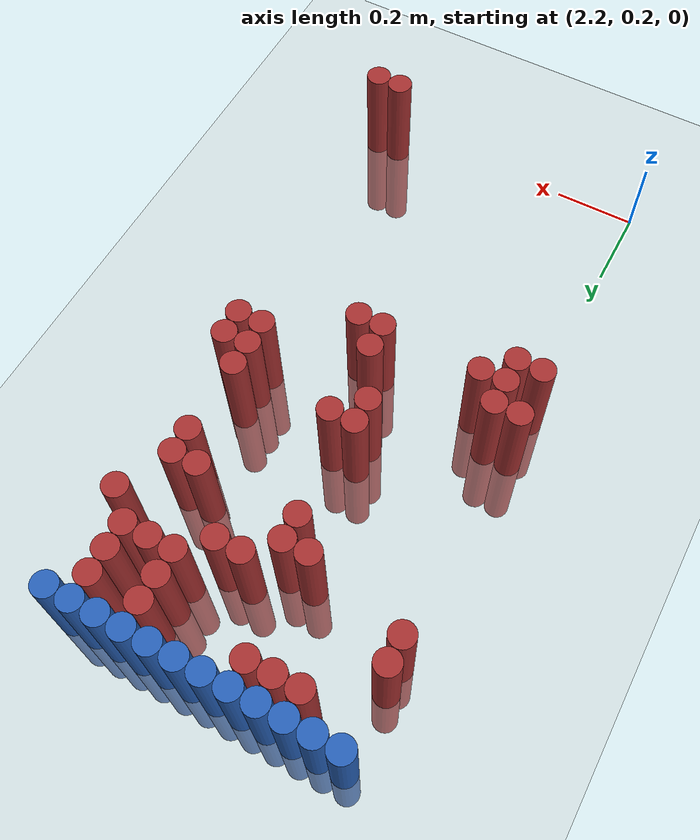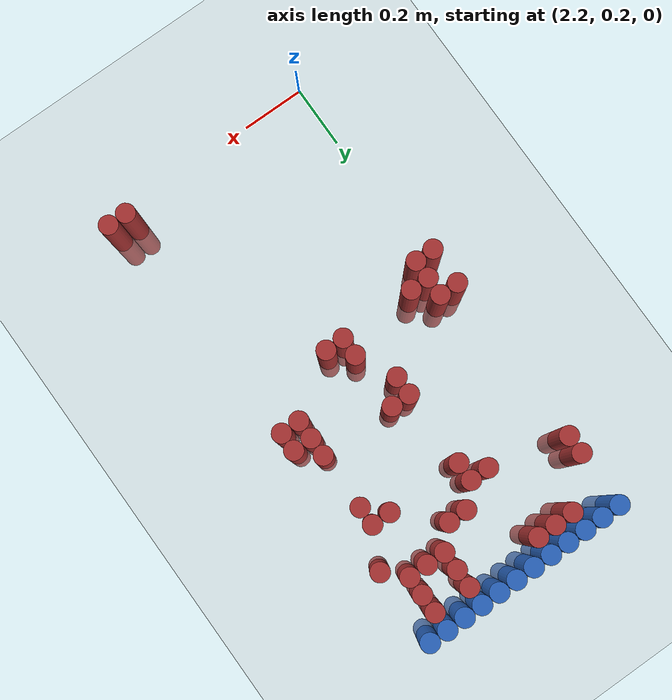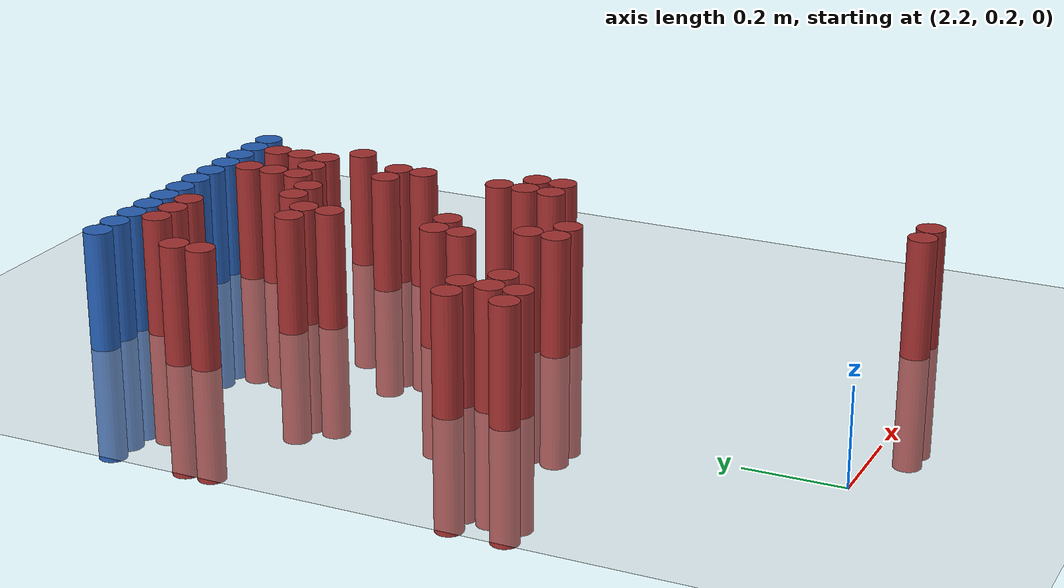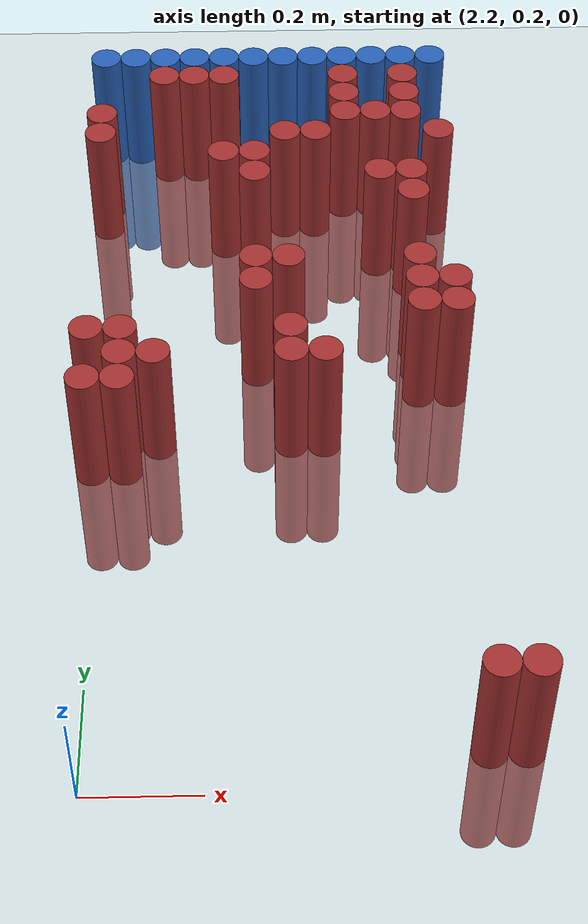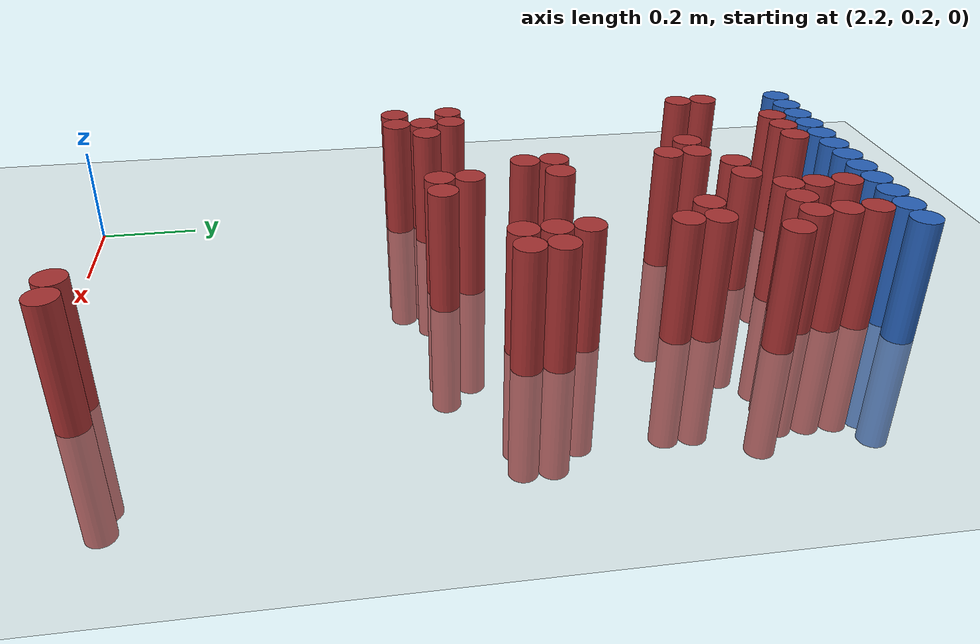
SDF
<sdf version="1.6">
 <world name="default">
  <model name="ground_plane">
   <static>1</static>
   <link name="link">
    <collision name="collision">
     <geometry><plane><normal>0 0 1</normal><size>100 100</size></plane></geometry>
     <surface><friction><ode><mu>100</mu><mu2>50</mu2></ode></friction></surface>
    </collision>
    <visual name="visual">
     <cast_shadows>0</cast_shadows>
     <geometry><plane><normal>0 0 1</normal><size>100 100</size></plane></geometry>
     <material>
      <script><uri>file://media/materials/scripts/gazebo.material</uri><name>Gazebo/Grey</name></script>
     </material>
    </visual>
   </link>
  </model>
  <model name="unit_cylinder_97">
   <static>1</static>
   <pose>2.190000 1.770000 0.000000 0.000000 0.000000 0.000000</pose>
   <link name="link">
    <inertial>
     <mass>1</mass>
     <inertia><ixx>0.145833</ixx><ixy>0</ixy><ixz>0</ixz><iyy>0.145833</iyy><iyz>0</iyz><izz>0.125</izz></inertia>
    </inertial>
    <collision name="collision">
     <geometry><cylinder><radius>0.030000</radius><length>0.5</length></cylinder></geometry>
    </collision>
    <visual name="visual">
     <geometry><cylinder><radius>0.030000</radius><length>0.5</length></cylinder></geometry>
     <material>
      <ambient>0.152000 0.379000 0.720000 1</ambient>
      <diffuse>0.152000 0.379000 0.720000 1</diffuse>
     </material>
     <material>
      <script><name>Gazebo/Grey</name><uri>file://media/materials/scripts/gazebo.material</uri></script>
     </material>
    </visual>
   </link>
  </model>
  <model name="unit_cylinder_98">
   <static>1</static>
   <pose>2.250000 1.770000 0.000000 0.000000 0.000000 0.000000</pose>
   <link name="link">
    <inertial>
     <mass>1</mass>
     <inertia><ixx>0.145833</ixx><ixy>0</ixy><ixz>0</ixz><iyy>0.145833</iyy><iyz>0</iyz><izz>0.125</izz></inertia>
    </inertial>
    <collision name="collision">
     <geometry><cylinder><radius>0.030000</radius><length>0.5</length></cylinder></geometry>
    </collision>
    <visual name="visual">
     <geometry><cylinder><radius>0.030000</radius><length>0.5</length></cylinder></geometry>
     <material>
      <ambient>0.152000 0.379000 0.720000 1</ambient>
      <diffuse>0.152000 0.379000 0.720000 1</diffuse>
     </material>
     <material>
      <script><name>Gazebo/Grey</name><uri>file://media/materials/scripts/gazebo.material</uri></script>
     </material>
    </visual>
   </link>
  </model>
  <model name="unit_cylinder_99">
   <static>1</static>
   <pose>2.310000 1.770000 0.000000 0.000000 0.000000 0.000000</pose>
   <link name="link">
    <inertial>
     <mass>1</mass>
     <inertia><ixx>0.145833</ixx><ixy>0</ixy><ixz>0</ixz><iyy>0.145833</iyy><iyz>0</iyz><izz>0.125</izz></inertia>
    </inertial>
    <collision name="collision">
     <geometry><cylinder><radius>0.030000</radius><length>0.5</length></cylinder></geometry>
    </collision>
    <visual name="visual">
     <geometry><cylinder><radius>0.030000</radius><length>0.5</length></cylinder></geometry>
     <material>
      <ambient>0.152000 0.379000 0.720000 1</ambient>
      <diffuse>0.152000 0.379000 0.720000 1</diffuse>
     </material>
     <material>
      <script><name>Gazebo/Grey</name><uri>file://media/materials/scripts/gazebo.material</uri></script>
     </material>
    </visual>
   </link>
  </model>
  <model name="unit_cylinder_100">
   <static>1</static>
   <pose>2.370000 1.770000 0.000000 0.000000 0.000000 0.000000</pose>
   <link name="link">
    <inertial>
     <mass>1</mass>
     <inertia><ixx>0.145833</ixx><ixy>0</ixy><ixz>0</ixz><iyy>0.145833</iyy><iyz>0</iyz><izz>0.125</izz></inertia>
    </inertial>
    <collision name="collision">
     <geometry><cylinder><radius>0.030000</radius><length>0.5</length></cylinder></geometry>
    </collision>
    <visual name="visual">
     <geometry><cylinder><radius>0.030000</radius><length>0.5</length></cylinder></geometry>
     <material>
      <ambient>0.152000 0.379000 0.720000 1</ambient>
      <diffuse>0.152000 0.379000 0.720000 1</diffuse>
     </material>
     <material>
      <script><name>Gazebo/Grey</name><uri>file://media/materials/scripts/gazebo.material</uri></script>
     </material>
    </visual>
   </link>
  </model>
  <model name="unit_cylinder_101">
   <static>1</static>
   <pose>2.430000 1.770000 0.000000 0.000000 0.000000 0.000000</pose>
   <link name="link">
    <inertial>
     <mass>1</mass>
     <inertia><ixx>0.145833</ixx><ixy>0</ixy><ixz>0</ixz><iyy>0.145833</iyy><iyz>0</iyz><izz>0.125</izz></inertia>
    </inertial>
    <collision name="collision">
     <geometry><cylinder><radius>0.030000</radius><length>0.5</length></cylinder></geometry>
    </collision>
    <visual name="visual">
     <geometry><cylinder><radius>0.030000</radius><length>0.5</length></cylinder></geometry>
     <material>
      <ambient>0.152000 0.379000 0.720000 1</ambient>
      <diffuse>0.152000 0.379000 0.720000 1</diffuse>
     </material>
     <material>
      <script><name>Gazebo/Grey</name><uri>file://media/materials/scripts/gazebo.material</uri></script>
     </material>
    </visual>
   </link>
  </model>
  <model name="unit_cylinder_102">
   <static>1</static>
   <pose>2.490000 1.770000 0.000000 0.000000 0.000000 0.000000</pose>
   <link name="link">
    <inertial>
     <mass>1</mass>
     <inertia><ixx>0.145833</ixx><ixy>0</ixy><ixz>0</ixz><iyy>0.145833</iyy><iyz>0</iyz><izz>0.125</izz></inertia>
    </inertial>
    <collision name="collision">
     <geometry><cylinder><radius>0.030000</radius><length>0.5</length></cylinder></geometry>
    </collision>
    <visual name="visual">
     <geometry><cylinder><radius>0.030000</radius><length>0.5</length></cylinder></geometry>
     <material>
      <ambient>0.152000 0.379000 0.720000 1</ambient>
      <diffuse>0.152000 0.379000 0.720000 1</diffuse>
     </material>
     <material>
      <script><name>Gazebo/Grey</name><uri>file://media/materials/scripts/gazebo.material</uri></script>
     </material>
    </visual>
   </link>
  </model>
  <model name="unit_cylinder_103">
   <static>1</static>
   <pose>2.550000 1.770000 0.000000 0.000000 0.000000 0.000000</pose>
   <link name="link">
    <inertial>
     <mass>1</mass>
     <inertia><ixx>0.145833</ixx><ixy>0</ixy><ixz>0</ixz><iyy>0.145833</iyy><iyz>0</iyz><izz>0.125</izz></inertia>
    </inertial>
    <collision name="collision">
     <geometry><cylinder><radius>0.030000</radius><length>0.5</length></cylinder></geometry>
    </collision>
    <visual name="visual">
     <geometry><cylinder><radius>0.030000</radius><length>0.5</length></cylinder></geometry>
     <material>
      <ambient>0.152000 0.379000 0.720000 1</ambient>
      <diffuse>0.152000 0.379000 0.720000 1</diffuse>
     </material>
     <material>
      <script><name>Gazebo/Grey</name><uri>file://media/materials/scripts/gazebo.material</uri></script>
     </material>
    </visual>
   </link>
  </model>
  <model name="unit_cylinder_104">
   <static>1</static>
   <pose>2.610000 1.770000 0.000000 0.000000 0.000000 0.000000</pose>
   <link name="link">
    <inertial>
     <mass>1</mass>
     <inertia><ixx>0.145833</ixx><ixy>0</ixy><ixz>0</ixz><iyy>0.145833</iyy><iyz>0</iyz><izz>0.125</izz></inertia>
    </inertial>
    <collision name="collision">
     <geometry><cylinder><radius>0.030000</radius><length>0.5</length></cylinder></geometry>
    </collision>
    <visual name="visual">
     <geometry><cylinder><radius>0.030000</radius><length>0.5</length></cylinder></geometry>
     <material>
      <ambient>0.152000 0.379000 0.720000 1</ambient>
      <diffuse>0.152000 0.379000 0.720000 1</diffuse>
     </material>
     <material>
      <script><name>Gazebo/Grey</name><uri>file://media/materials/scripts/gazebo.material</uri></script>
     </material>
    </visual>
   </link>
  </model>
  <model name="unit_cylinder_105">
   <static>1</static>
   <pose>2.670000 1.770000 0.000000 0.000000 0.000000 0.000000</pose>
   <link name="link">
    <inertial>
     <mass>1</mass>
     <inertia><ixx>0.145833</ixx><ixy>0</ixy><ixz>0</ixz><iyy>0.145833</iyy><iyz>0</iyz><izz>0.125</izz></inertia>
    </inertial>
    <collision name="collision">
     <geometry><cylinder><radius>0.030000</radius><length>0.5</length></cylinder></geometry>
    </collision>
    <visual name="visual">
     <geometry><cylinder><radius>0.030000</radius><length>0.5</length></cylinder></geometry>
     <material>
      <ambient>0.152000 0.379000 0.720000 1</ambient>
      <diffuse>0.152000 0.379000 0.720000 1</diffuse>
     </material>
     <material>
      <script><name>Gazebo/Grey</name><uri>file://media/materials/scripts/gazebo.material</uri></script>
     </material>
    </visual>
   </link>
  </model>
  <model name="unit_cylinder_106">
   <static>1</static>
   <pose>2.730000 1.770000 0.000000 0.000000 0.000000 0.000000</pose>
   <link name="link">
    <inertial>
     <mass>1</mass>
     <inertia><ixx>0.145833</ixx><ixy>0</ixy><ixz>0</ixz><iyy>0.145833</iyy><iyz>0</iyz><izz>0.125</izz></inertia>
    </inertial>
    <collision name="collision">
     <geometry><cylinder><radius>0.030000</radius><length>0.5</length></cylinder></geometry>
    </collision>
    <visual name="visual">
     <geometry><cylinder><radius>0.030000</radius><length>0.5</length></cylinder></geometry>
     <material>
      <ambient>0.152000 0.379000 0.720000 1</ambient>
      <diffuse>0.152000 0.379000 0.720000 1</diffuse>
     </material>
     <material>
      <script><name>Gazebo/Grey</name><uri>file://media/materials/scripts/gazebo.material</uri></script>
     </material>
    </visual>
   </link>
  </model>
  <model name="unit_cylinder_107">
   <static>1</static>
   <pose>2.790000 1.770000 0.000000 0.000000 0.000000 0.000000</pose>
   <link name="link">
    <inertial>
     <mass>1</mass>
     <inertia><ixx>0.145833</ixx><ixy>0</ixy><ixz>0</ixz><iyy>0.145833</iyy><iyz>0</iyz><izz>0.125</izz></inertia>
    </inertial>
    <collision name="collision">
     <geometry><cylinder><radius>0.030000</radius><length>0.5</length></cylinder></geometry>
    </collision>
    <visual name="visual">
     <geometry><cylinder><radius>0.030000</radius><length>0.5</length></cylinder></geometry>
     <material>
      <ambient>0.152000 0.379000 0.720000 1</ambient>
      <diffuse>0.152000 0.379000 0.720000 1</diffuse>
     </material>
     <material>
      <script><name>Gazebo/Grey</name><uri>file://media/materials/scripts/gazebo.material</uri></script>
     </material>
    </visual>
   </link>
  </model>
  <model name="unit_cylinder_108">
   <static>1</static>
   <pose>2.850000 1.770000 0.000000 0.000000 0.000000 0.000000</pose>
   <link name="link">
    <inertial>
     <mass>1</mass>
     <inertia><ixx>0.145833</ixx><ixy>0</ixy><ixz>0</ixz><iyy>0.145833</iyy><iyz>0</iyz><izz>0.125</izz></inertia>
    </inertial>
    <collision name="collision">
     <geometry><cylinder><radius>0.030000</radius><length>0.5</length></cylinder></geometry>
    </collision>
    <visual name="visual">
     <geometry><cylinder><radius>0.030000</radius><length>0.5</length></cylinder></geometry>
     <material>
      <ambient>0.152000 0.379000 0.720000 1</ambient>
      <diffuse>0.152000 0.379000 0.720000 1</diffuse>
     </material>
     <material>
      <script><name>Gazebo/Grey</name><uri>file://media/materials/scripts/gazebo.material</uri></script>
     </material>
    </visual>
   </link>
  </model>
  <model name="unit_cylinder_125">
   <static>1</static>
   <pose>2.310000 1.710000 0.000000 0.000000 0.000000 0.000000</pose>
   <link name="link">
    <inertial>
     <mass>1</mass>
     <inertia><ixx>0.145833</ixx><ixy>0</ixy><ixz>0</ixz><iyy>0.145833</iyy><iyz>0</iyz><izz>0.125</izz></inertia>
    </inertial>
    <collision name="collision">
     <geometry><cylinder><radius>0.030000</radius><length>0.5</length></cylinder></geometry>
    </collision>
    <visual name="visual">
     <geometry><cylinder><radius>0.030000</radius><length>0.5</length></cylinder></geometry>
     <material>
      <ambient>0.648000 0.192000 0.192000 1</ambient>
      <diffuse>0.648000 0.192000 0.192000 1</diffuse>
     </material>
     <material>
      <script><name>Gazebo/Grey</name><uri>file://media/materials/scripts/gazebo.material</uri></script>
     </material>
    </visual>
   </link>
  </model>
  <model name="unit_cylinder_126">
   <static>1</static>
   <pose>2.370000 1.710000 0.000000 0.000000 0.000000 0.000000</pose>
   <link name="link">
    <inertial>
     <mass>1</mass>
     <inertia><ixx>0.145833</ixx><ixy>0</ixy><ixz>0</ixz><iyy>0.145833</iyy><iyz>0</iyz><izz>0.125</izz></inertia>
    </inertial>
    <collision name="collision">
     <geometry><cylinder><radius>0.030000</radius><length>0.5</length></cylinder></geometry>
    </collision>
    <visual name="visual">
     <geometry><cylinder><radius>0.030000</radius><length>0.5</length></cylinder></geometry>
     <material>
      <ambient>0.648000 0.192000 0.192000 1</ambient>
      <diffuse>0.648000 0.192000 0.192000 1</diffuse>
     </material>
     <material>
      <script><name>Gazebo/Grey</name><uri>file://media/materials/scripts/gazebo.material</uri></script>
     </material>
    </visual>
   </link>
  </model>
  <model name="unit_cylinder_127">
   <static>1</static>
   <pose>2.430000 1.710000 0.000000 0.000000 0.000000 0.000000</pose>
   <link name="link">
    <inertial>
     <mass>1</mass>
     <inertia><ixx>0.145833</ixx><ixy>0</ixy><ixz>0</ixz><iyy>0.145833</iyy><iyz>0</iyz><izz>0.125</izz></inertia>
    </inertial>
    <collision name="collision">
     <geometry><cylinder><radius>0.030000</radius><length>0.5</length></cylinder></geometry>
    </collision>
    <visual name="visual">
     <geometry><cylinder><radius>0.030000</radius><length>0.5</length></cylinder></geometry>
     <material>
      <ambient>0.648000 0.192000 0.192000 1</ambient>
      <diffuse>0.648000 0.192000 0.192000 1</diffuse>
     </material>
     <material>
      <script><name>Gazebo/Grey</name><uri>file://media/materials/scripts/gazebo.material</uri></script>
     </material>
    </visual>
   </link>
  </model>
  <model name="unit_cylinder_128">
   <static>1</static>
   <pose>2.670000 1.710000 0.000000 0.000000 0.000000 0.000000</pose>
   <link name="link">
    <inertial>
     <mass>1</mass>
     <inertia><ixx>0.145833</ixx><ixy>0</ixy><ixz>0</ixz><iyy>0.145833</iyy><iyz>0</iyz><izz>0.125</izz></inertia>
    </inertial>
    <collision name="collision">
     <geometry><cylinder><radius>0.030000</radius><length>0.5</length></cylinder></geometry>
    </collision>
    <visual name="visual">
     <geometry><cylinder><radius>0.030000</radius><length>0.5</length></cylinder></geometry>
     <material>
      <ambient>0.648000 0.192000 0.192000 1</ambient>
      <diffuse>0.648000 0.192000 0.192000 1</diffuse>
     </material>
     <material>
      <script><name>Gazebo/Grey</name><uri>file://media/materials/scripts/gazebo.material</uri></script>
     </material>
    </visual>
   </link>
  </model>
  <model name="unit_cylinder_129">
   <static>1</static>
   <pose>2.790000 1.710000 0.000000 0.000000 0.000000 0.000000</pose>
   <link name="link">
    <inertial>
     <mass>1</mass>
     <inertia><ixx>0.145833</ixx><ixy>0</ixy><ixz>0</ixz><iyy>0.145833</iyy><iyz>0</iyz><izz>0.125</izz></inertia>
    </inertial>
    <collision name="collision">
     <geometry><cylinder><radius>0.030000</radius><length>0.5</length></cylinder></geometry>
    </collision>
    <visual name="visual">
     <geometry><cylinder><radius>0.030000</radius><length>0.5</length></cylinder></geometry>
     <material>
      <ambient>0.648000 0.192000 0.192000 1</ambient>
      <diffuse>0.648000 0.192000 0.192000 1</diffuse>
     </material>
     <material>
      <script><name>Gazebo/Grey</name><uri>file://media/materials/scripts/gazebo.material</uri></script>
     </material>
    </visual>
   </link>
  </model>
  <model name="unit_cylinder_135">
   <static>1</static>
   <pose>2.670000 1.650000 0.000000 0.000000 0.000000 0.000000</pose>
   <link name="link">
    <inertial>
     <mass>1</mass>
     <inertia><ixx>0.145833</ixx><ixy>0</ixy><ixz>0</ixz><iyy>0.145833</iyy><iyz>0</iyz><izz>0.125</izz></inertia>
    </inertial>
    <collision name="collision">
     <geometry><cylinder><radius>0.030000</radius><length>0.5</length></cylinder></geometry>
    </collision>
    <visual name="visual">
     <geometry><cylinder><radius>0.030000</radius><length>0.5</length></cylinder></geometry>
     <material>
      <ambient>0.648000 0.192000 0.192000 1</ambient>
      <diffuse>0.648000 0.192000 0.192000 1</diffuse>
     </material>
     <material>
      <script><name>Gazebo/Grey</name><uri>file://media/materials/scripts/gazebo.material</uri></script>
     </material>
    </visual>
   </link>
  </model>
  <model name="unit_cylinder_136">
   <static>1</static>
   <pose>2.790000 1.650000 0.000000 0.000000 0.000000 0.000000</pose>
   <link name="link">
    <inertial>
     <mass>1</mass>
     <inertia><ixx>0.145833</ixx><ixy>0</ixy><ixz>0</ixz><iyy>0.145833</iyy><iyz>0</iyz><izz>0.125</izz></inertia>
    </inertial>
    <collision name="collision">
     <geometry><cylinder><radius>0.030000</radius><length>0.5</length></cylinder></geometry>
    </collision>
    <visual name="visual">
     <geometry><cylinder><radius>0.030000</radius><length>0.5</length></cylinder></geometry>
     <material>
      <ambient>0.648000 0.192000 0.192000 1</ambient>
      <diffuse>0.648000 0.192000 0.192000 1</diffuse>
     </material>
     <material>
      <script><name>Gazebo/Grey</name><uri>file://media/materials/scripts/gazebo.material</uri></script>
     </material>
    </visual>
   </link>
  </model>
  <model name="unit_cylinder_139">
   <static>1</static>
   <pose>2.190000 1.590000 0.000000 0.000000 0.000000 0.000000</pose>
   <link name="link">
    <inertial>
     <mass>1</mass>
     <inertia><ixx>0.145833</ixx><ixy>0</ixy><ixz>0</ixz><iyy>0.145833</iyy><iyz>0</iyz><izz>0.125</izz></inertia>
    </inertial>
    <collision name="collision">
     <geometry><cylinder><radius>0.030000</radius><length>0.5</length></cylinder></geometry>
    </collision>
    <visual name="visual">
     <geometry><cylinder><radius>0.030000</radius><length>0.5</length></cylinder></geometry>
     <material>
      <ambient>0.648000 0.192000 0.192000 1</ambient>
      <diffuse>0.648000 0.192000 0.192000 1</diffuse>
     </material>
     <material>
      <script><name>Gazebo/Grey</name><uri>file://media/materials/scripts/gazebo.material</uri></script>
     </material>
    </visual>
   </link>
  </model>
  <model name="unit_cylinder_140">
   <static>1</static>
   <pose>2.670000 1.590000 0.000000 0.000000 0.000000 0.000000</pose>
   <link name="link">
    <inertial>
     <mass>1</mass>
     <inertia><ixx>0.145833</ixx><ixy>0</ixy><ixz>0</ixz><iyy>0.145833</iyy><iyz>0</iyz><izz>0.125</izz></inertia>
    </inertial>
    <collision name="collision">
     <geometry><cylinder><radius>0.030000</radius><length>0.5</length></cylinder></geometry>
    </collision>
    <visual name="visual">
     <geometry><cylinder><radius>0.030000</radius><length>0.5</length></cylinder></geometry>
     <material>
      <ambient>0.648000 0.192000 0.192000 1</ambient>
      <diffuse>0.648000 0.192000 0.192000 1</diffuse>
     </material>
     <material>
      <script><name>Gazebo/Grey</name><uri>file://media/materials/scripts/gazebo.material</uri></script>
     </material>
    </visual>
   </link>
  </model>
  <model name="unit_cylinder_141">
   <static>1</static>
   <pose>2.730000 1.590000 0.000000 0.000000 0.000000 0.000000</pose>
   <link name="link">
    <inertial>
     <mass>1</mass>
     <inertia><ixx>0.145833</ixx><ixy>0</ixy><ixz>0</ixz><iyy>0.145833</iyy><iyz>0</iyz><izz>0.125</izz></inertia>
    </inertial>
    <collision name="collision">
     <geometry><cylinder><radius>0.030000</radius><length>0.5</length></cylinder></geometry>
    </collision>
    <visual name="visual">
     <geometry><cylinder><radius>0.030000</radius><length>0.5</length></cylinder></geometry>
     <material>
      <ambient>0.648000 0.192000 0.192000 1</ambient>
      <diffuse>0.648000 0.192000 0.192000 1</diffuse>
     </material>
     <material>
      <script><name>Gazebo/Grey</name><uri>file://media/materials/scripts/gazebo.material</uri></script>
     </material>
    </visual>
   </link>
  </model>
  <model name="unit_cylinder_142">
   <static>1</static>
   <pose>2.790000 1.590000 0.000000 0.000000 0.000000 0.000000</pose>
   <link name="link">
    <inertial>
     <mass>1</mass>
     <inertia><ixx>0.145833</ixx><ixy>0</ixy><ixz>0</ixz><iyy>0.145833</iyy><iyz>0</iyz><izz>0.125</izz></inertia>
    </inertial>
    <collision name="collision">
     <geometry><cylinder><radius>0.030000</radius><length>0.5</length></cylinder></geometry>
    </collision>
    <visual name="visual">
     <geometry><cylinder><radius>0.030000</radius><length>0.5</length></cylinder></geometry>
     <material>
      <ambient>0.648000 0.192000 0.192000 1</ambient>
      <diffuse>0.648000 0.192000 0.192000 1</diffuse>
     </material>
     <material>
      <script><name>Gazebo/Grey</name><uri>file://media/materials/scripts/gazebo.material</uri></script>
     </material>
    </visual>
   </link>
  </model>
  <model name="unit_cylinder_144">
   <static>1</static>
   <pose>2.190000 1.530000 0.000000 0.000000 0.000000 0.000000</pose>
   <link name="link">
    <inertial>
     <mass>1</mass>
     <inertia><ixx>0.145833</ixx><ixy>0</ixy><ixz>0</ixz><iyy>0.145833</iyy><iyz>0</iyz><izz>0.125</izz></inertia>
    </inertial>
    <collision name="collision">
     <geometry><cylinder><radius>0.030000</radius><length>0.5</length></cylinder></geometry>
    </collision>
    <visual name="visual">
     <geometry><cylinder><radius>0.030000</radius><length>0.5</length></cylinder></geometry>
     <material>
      <ambient>0.648000 0.192000 0.192000 1</ambient>
      <diffuse>0.648000 0.192000 0.192000 1</diffuse>
     </material>
     <material>
      <script><name>Gazebo/Grey</name><uri>file://media/materials/scripts/gazebo.material</uri></script>
     </material>
    </visual>
   </link>
  </model>
  <model name="unit_cylinder_145">
   <static>1</static>
   <pose>2.550000 1.530000 0.000000 0.000000 0.000000 0.000000</pose>
   <link name="link">
    <inertial>
     <mass>1</mass>
     <inertia><ixx>0.145833</ixx><ixy>0</ixy><ixz>0</ixz><iyy>0.145833</iyy><iyz>0</iyz><izz>0.125</izz></inertia>
    </inertial>
    <collision name="collision">
     <geometry><cylinder><radius>0.030000</radius><length>0.5</length></cylinder></geometry>
    </collision>
    <visual name="visual">
     <geometry><cylinder><radius>0.030000</radius><length>0.5</length></cylinder></geometry>
     <material>
      <ambient>0.648000 0.192000 0.192000 1</ambient>
      <diffuse>0.648000 0.192000 0.192000 1</diffuse>
     </material>
     <material>
      <script><name>Gazebo/Grey</name><uri>file://media/materials/scripts/gazebo.material</uri></script>
     </material>
    </visual>
   </link>
  </model>
  <model name="unit_cylinder_146">
   <static>1</static>
   <pose>2.610000 1.530000 0.000000 0.000000 0.000000 0.000000</pose>
   <link name="link">
    <inertial>
     <mass>1</mass>
     <inertia><ixx>0.145833</ixx><ixy>0</ixy><ixz>0</ixz><iyy>0.145833</iyy><iyz>0</iyz><izz>0.125</izz></inertia>
    </inertial>
    <collision name="collision">
     <geometry><cylinder><radius>0.030000</radius><length>0.5</length></cylinder></geometry>
    </collision>
    <visual name="visual">
     <geometry><cylinder><radius>0.030000</radius><length>0.5</length></cylinder></geometry>
     <material>
      <ambient>0.648000 0.192000 0.192000 1</ambient>
      <diffuse>0.648000 0.192000 0.192000 1</diffuse>
     </material>
     <material>
      <script><name>Gazebo/Grey</name><uri>file://media/materials/scripts/gazebo.material</uri></script>
     </material>
    </visual>
   </link>
  </model>
  <model name="unit_cylinder_147">
   <static>1</static>
   <pose>2.850000 1.530000 0.000000 0.000000 0.000000 0.000000</pose>
   <link name="link">
    <inertial>
     <mass>1</mass>
     <inertia><ixx>0.145833</ixx><ixy>0</ixy><ixz>0</ixz><iyy>0.145833</iyy><iyz>0</iyz><izz>0.125</izz></inertia>
    </inertial>
    <collision name="collision">
     <geometry><cylinder><radius>0.030000</radius><length>0.5</length></cylinder></geometry>
    </collision>
    <visual name="visual">
     <geometry><cylinder><radius>0.030000</radius><length>0.5</length></cylinder></geometry>
     <material>
      <ambient>0.648000 0.192000 0.192000 1</ambient>
      <diffuse>0.648000 0.192000 0.192000 1</diffuse>
     </material>
     <material>
      <script><name>Gazebo/Grey</name><uri>file://media/materials/scripts/gazebo.material</uri></script>
     </material>
    </visual>
   </link>
  </model>
  <model name="unit_cylinder_148">
   <static>1</static>
   <pose>2.430000 1.470000 0.000000 0.000000 0.000000 0.000000</pose>
   <link name="link">
    <inertial>
     <mass>1</mass>
     <inertia><ixx>0.145833</ixx><ixy>0</ixy><ixz>0</ixz><iyy>0.145833</iyy><iyz>0</iyz><izz>0.125</izz></inertia>
    </inertial>
    <collision name="collision">
     <geometry><cylinder><radius>0.030000</radius><length>0.5</length></cylinder></geometry>
    </collision>
    <visual name="visual">
     <geometry><cylinder><radius>0.030000</radius><length>0.5</length></cylinder></geometry>
     <material>
      <ambient>0.648000 0.192000 0.192000 1</ambient>
      <diffuse>0.648000 0.192000 0.192000 1</diffuse>
     </material>
     <material>
      <script><name>Gazebo/Grey</name><uri>file://media/materials/scripts/gazebo.material</uri></script>
     </material>
    </visual>
   </link>
  </model>
  <model name="unit_cylinder_149">
   <static>1</static>
   <pose>2.490000 1.470000 0.000000 0.000000 0.000000 0.000000</pose>
   <link name="link">
    <inertial>
     <mass>1</mass>
     <inertia><ixx>0.145833</ixx><ixy>0</ixy><ixz>0</ixz><iyy>0.145833</iyy><iyz>0</iyz><izz>0.125</izz></inertia>
    </inertial>
    <collision name="collision">
     <geometry><cylinder><radius>0.030000</radius><length>0.5</length></cylinder></geometry>
    </collision>
    <visual name="visual">
     <geometry><cylinder><radius>0.030000</radius><length>0.5</length></cylinder></geometry>
     <material>
      <ambient>0.648000 0.192000 0.192000 1</ambient>
      <diffuse>0.648000 0.192000 0.192000 1</diffuse>
     </material>
     <material>
      <script><name>Gazebo/Grey</name><uri>file://media/materials/scripts/gazebo.material</uri></script>
     </material>
    </visual>
   </link>
  </model>
  <model name="unit_cylinder_150">
   <static>1</static>
   <pose>2.490000 1.410000 0.000000 0.000000 0.000000 0.000000</pose>
   <link name="link">
    <inertial>
     <mass>1</mass>
     <inertia><ixx>0.145833</ixx><ixy>0</ixy><ixz>0</ixz><iyy>0.145833</iyy><iyz>0</iyz><izz>0.125</izz></inertia>
    </inertial>
    <collision name="collision">
     <geometry><cylinder><radius>0.030000</radius><length>0.5</length></cylinder></geometry>
    </collision>
    <visual name="visual">
     <geometry><cylinder><radius>0.030000</radius><length>0.5</length></cylinder></geometry>
     <material>
      <ambient>0.648000 0.192000 0.192000 1</ambient>
      <diffuse>0.648000 0.192000 0.192000 1</diffuse>
     </material>
     <material>
      <script><name>Gazebo/Grey</name><uri>file://media/materials/scripts/gazebo.material</uri></script>
     </material>
    </visual>
   </link>
  </model>
  <model name="unit_cylinder_151">
   <static>1</static>
   <pose>2.730000 1.410000 0.000000 0.000000 0.000000 0.000000</pose>
   <link name="link">
    <inertial>
     <mass>1</mass>
     <inertia><ixx>0.145833</ixx><ixy>0</ixy><ixz>0</ixz><iyy>0.145833</iyy><iyz>0</iyz><izz>0.125</izz></inertia>
    </inertial>
    <collision name="collision">
     <geometry><cylinder><radius>0.030000</radius><length>0.5</length></cylinder></geometry>
    </collision>
    <visual name="visual">
     <geometry><cylinder><radius>0.030000</radius><length>0.5</length></cylinder></geometry>
     <material>
      <ambient>0.648000 0.192000 0.192000 1</ambient>
      <diffuse>0.648000 0.192000 0.192000 1</diffuse>
     </material>
     <material>
      <script><name>Gazebo/Grey</name><uri>file://media/materials/scripts/gazebo.material</uri></script>
     </material>
    </visual>
   </link>
  </model>
  <model name="unit_cylinder_152">
   <static>1</static>
   <pose>2.790000 1.410000 0.000000 0.000000 0.000000 0.000000</pose>
   <link name="link">
    <inertial>
     <mass>1</mass>
     <inertia><ixx>0.145833</ixx><ixy>0</ixy><ixz>0</ixz><iyy>0.145833</iyy><iyz>0</iyz><izz>0.125</izz></inertia>
    </inertial>
    <collision name="collision">
     <geometry><cylinder><radius>0.030000</radius><length>0.5</length></cylinder></geometry>
    </collision>
    <visual name="visual">
     <geometry><cylinder><radius>0.030000</radius><length>0.5</length></cylinder></geometry>
     <material>
      <ambient>0.648000 0.192000 0.192000 1</ambient>
      <diffuse>0.648000 0.192000 0.192000 1</diffuse>
     </material>
     <material>
      <script><name>Gazebo/Grey</name><uri>file://media/materials/scripts/gazebo.material</uri></script>
     </material>
    </visual>
   </link>
  </model>
  <model name="unit_cylinder_153">
   <static>1</static>
   <pose>2.790000 1.350000 0.000000 0.000000 0.000000 0.000000</pose>
   <link name="link">
    <inertial>
     <mass>1</mass>
     <inertia><ixx>0.145833</ixx><ixy>0</ixy><ixz>0</ixz><iyy>0.145833</iyy><iyz>0</iyz><izz>0.125</izz></inertia>
    </inertial>
    <collision name="collision">
     <geometry><cylinder><radius>0.030000</radius><length>0.5</length></cylinder></geometry>
    </collision>
    <visual name="visual">
     <geometry><cylinder><radius>0.030000</radius><length>0.5</length></cylinder></geometry>
     <material>
      <ambient>0.648000 0.192000 0.192000 1</ambient>
      <diffuse>0.648000 0.192000 0.192000 1</diffuse>
     </material>
     <material>
      <script><name>Gazebo/Grey</name><uri>file://media/materials/scripts/gazebo.material</uri></script>
     </material>
    </visual>
   </link>
  </model>
  <model name="unit_cylinder_160">
   <static>1</static>
   <pose>2.490000 1.170000 0.000000 0.000000 0.000000 0.000000</pose>
   <link name="link">
    <inertial>
     <mass>1</mass>
     <inertia><ixx>0.145833</ixx><ixy>0</ixy><ixz>0</ixz><iyy>0.145833</iyy><iyz>0</iyz><izz>0.125</izz></inertia>
    </inertial>
    <collision name="collision">
     <geometry><cylinder><radius>0.030000</radius><length>0.5</length></cylinder></geometry>
    </collision>
    <visual name="visual">
     <geometry><cylinder><radius>0.030000</radius><length>0.5</length></cylinder></geometry>
     <material>
      <ambient>0.648000 0.192000 0.192000 1</ambient>
      <diffuse>0.648000 0.192000 0.192000 1</diffuse>
     </material>
     <material>
      <script><name>Gazebo/Grey</name><uri>file://media/materials/scripts/gazebo.material</uri></script>
     </material>
    </visual>
   </link>
  </model>
  <model name="unit_cylinder_161">
   <static>1</static>
   <pose>2.550000 1.170000 0.000000 0.000000 0.000000 0.000000</pose>
   <link name="link">
    <inertial>
     <mass>1</mass>
     <inertia><ixx>0.145833</ixx><ixy>0</ixy><ixz>0</ixz><iyy>0.145833</iyy><iyz>0</iyz><izz>0.125</izz></inertia>
    </inertial>
    <collision name="collision">
     <geometry><cylinder><radius>0.030000</radius><length>0.5</length></cylinder></geometry>
    </collision>
    <visual name="visual">
     <geometry><cylinder><radius>0.030000</radius><length>0.5</length></cylinder></geometry>
     <material>
      <ambient>0.648000 0.192000 0.192000 1</ambient>
      <diffuse>0.648000 0.192000 0.192000 1</diffuse>
     </material>
     <material>
      <script><name>Gazebo/Grey</name><uri>file://media/materials/scripts/gazebo.material</uri></script>
     </material>
    </visual>
   </link>
  </model>
  <model name="unit_cylinder_162">
   <static>1</static>
   <pose>2.790000 1.170000 0.000000 0.000000 0.000000 0.000000</pose>
   <link name="link">
    <inertial>
     <mass>1</mass>
     <inertia><ixx>0.145833</ixx><ixy>0</ixy><ixz>0</ixz><iyy>0.145833</iyy><iyz>0</iyz><izz>0.125</izz></inertia>
    </inertial>
    <collision name="collision">
     <geometry><cylinder><radius>0.030000</radius><length>0.5</length></cylinder></geometry>
    </collision>
    <visual name="visual">
     <geometry><cylinder><radius>0.030000</radius><length>0.5</length></cylinder></geometry>
     <material>
      <ambient>0.648000 0.192000 0.192000 1</ambient>
      <diffuse>0.648000 0.192000 0.192000 1</diffuse>
     </material>
     <material>
      <script><name>Gazebo/Grey</name><uri>file://media/materials/scripts/gazebo.material</uri></script>
     </material>
    </visual>
   </link>
  </model>
  <model name="unit_cylinder_163">
   <static>1</static>
   <pose>2.490000 1.110000 0.000000 0.000000 0.000000 0.000000</pose>
   <link name="link">
    <inertial>
     <mass>1</mass>
     <inertia><ixx>0.145833</ixx><ixy>0</ixy><ixz>0</ixz><iyy>0.145833</iyy><iyz>0</iyz><izz>0.125</izz></inertia>
    </inertial>
    <collision name="collision">
     <geometry><cylinder><radius>0.030000</radius><length>0.5</length></cylinder></geometry>
    </collision>
    <visual name="visual">
     <geometry><cylinder><radius>0.030000</radius><length>0.5</length></cylinder></geometry>
     <material>
      <ambient>0.648000 0.192000 0.192000 1</ambient>
      <diffuse>0.648000 0.192000 0.192000 1</diffuse>
     </material>
     <material>
      <script><name>Gazebo/Grey</name><uri>file://media/materials/scripts/gazebo.material</uri></script>
     </material>
    </visual>
   </link>
  </model>
  <model name="unit_cylinder_164">
   <static>1</static>
   <pose>2.790000 1.110000 0.000000 0.000000 0.000000 0.000000</pose>
   <link name="link">
    <inertial>
     <mass>1</mass>
     <inertia><ixx>0.145833</ixx><ixy>0</ixy><ixz>0</ixz><iyy>0.145833</iyy><iyz>0</iyz><izz>0.125</izz></inertia>
    </inertial>
    <collision name="collision">
     <geometry><cylinder><radius>0.030000</radius><length>0.5</length></cylinder></geometry>
    </collision>
    <visual name="visual">
     <geometry><cylinder><radius>0.030000</radius><length>0.5</length></cylinder></geometry>
     <material>
      <ambient>0.648000 0.192000 0.192000 1</ambient>
      <diffuse>0.648000 0.192000 0.192000 1</diffuse>
     </material>
     <material>
      <script><name>Gazebo/Grey</name><uri>file://media/materials/scripts/gazebo.material</uri></script>
     </material>
    </visual>
   </link>
  </model>
  <model name="unit_cylinder_165">
   <static>1</static>
   <pose>2.850000 1.110000 0.000000 0.000000 0.000000 0.000000</pose>
   <link name="link">
    <inertial>
     <mass>1</mass>
     <inertia><ixx>0.145833</ixx><ixy>0</ixy><ixz>0</ixz><iyy>0.145833</iyy><iyz>0</iyz><izz>0.125</izz></inertia>
    </inertial>
    <collision name="collision">
     <geometry><cylinder><radius>0.030000</radius><length>0.5</length></cylinder></geometry>
    </collision>
    <visual name="visual">
     <geometry><cylinder><radius>0.030000</radius><length>0.5</length></cylinder></geometry>
     <material>
      <ambient>0.648000 0.192000 0.192000 1</ambient>
      <diffuse>0.648000 0.192000 0.192000 1</diffuse>
     </material>
     <material>
      <script><name>Gazebo/Grey</name><uri>file://media/materials/scripts/gazebo.material</uri></script>
     </material>
    </visual>
   </link>
  </model>
  <model name="unit_cylinder_166">
   <static>1</static>
   <pose>2.790000 1.050000 0.000000 0.000000 0.000000 0.000000</pose>
   <link name="link">
    <inertial>
     <mass>1</mass>
     <inertia><ixx>0.145833</ixx><ixy>0</ixy><ixz>0</ixz><iyy>0.145833</iyy><iyz>0</iyz><izz>0.125</izz></inertia>
    </inertial>
    <collision name="collision">
     <geometry><cylinder><radius>0.030000</radius><length>0.5</length></cylinder></geometry>
    </collision>
    <visual name="visual">
     <geometry><cylinder><radius>0.030000</radius><length>0.5</length></cylinder></geometry>
     <material>
      <ambient>0.648000 0.192000 0.192000 1</ambient>
      <diffuse>0.648000 0.192000 0.192000 1</diffuse>
     </material>
     <material>
      <script><name>Gazebo/Grey</name><uri>file://media/materials/scripts/gazebo.material</uri></script>
     </material>
    </visual>
   </link>
  </model>
  <model name="unit_cylinder_167">
   <static>1</static>
   <pose>2.850000 1.050000 0.000000 0.000000 0.000000 0.000000</pose>
   <link name="link">
    <inertial>
     <mass>1</mass>
     <inertia><ixx>0.145833</ixx><ixy>0</ixy><ixz>0</ixz><iyy>0.145833</iyy><iyz>0</iyz><izz>0.125</izz></inertia>
    </inertial>
    <collision name="collision">
     <geometry><cylinder><radius>0.030000</radius><length>0.5</length></cylinder></geometry>
    </collision>
    <visual name="visual">
     <geometry><cylinder><radius>0.030000</radius><length>0.5</length></cylinder></geometry>
     <material>
      <ambient>0.648000 0.192000 0.192000 1</ambient>
      <diffuse>0.648000 0.192000 0.192000 1</diffuse>
     </material>
     <material>
      <script><name>Gazebo/Grey</name><uri>file://media/materials/scripts/gazebo.material</uri></script>
     </material>
    </visual>
   </link>
  </model>
  <model name="unit_cylinder_169">
   <static>1</static>
   <pose>2.190000 0.990000 0.000000 0.000000 0.000000 0.000000</pose>
   <link name="link">
    <inertial>
     <mass>1</mass>
     <inertia><ixx>0.145833</ixx><ixy>0</ixy><ixz>0</ixz><iyy>0.145833</iyy><iyz>0</iyz><izz>0.125</izz></inertia>
    </inertial>
    <collision name="collision">
     <geometry><cylinder><radius>0.030000</radius><length>0.5</length></cylinder></geometry>
    </collision>
    <visual name="visual">
     <geometry><cylinder><radius>0.030000</radius><length>0.5</length></cylinder></geometry>
     <material>
      <ambient>0.648000 0.192000 0.192000 1</ambient>
      <diffuse>0.648000 0.192000 0.192000 1</diffuse>
     </material>
     <material>
      <script><name>Gazebo/Grey</name><uri>file://media/materials/scripts/gazebo.material</uri></script>
     </material>
    </visual>
   </link>
  </model>
  <model name="unit_cylinder_170">
   <static>1</static>
   <pose>2.250000 0.990000 0.000000 0.000000 0.000000 0.000000</pose>
   <link name="link">
    <inertial>
     <mass>1</mass>
     <inertia><ixx>0.145833</ixx><ixy>0</ixy><ixz>0</ixz><iyy>0.145833</iyy><iyz>0</iyz><izz>0.125</izz></inertia>
    </inertial>
    <collision name="collision">
     <geometry><cylinder><radius>0.030000</radius><length>0.5</length></cylinder></geometry>
    </collision>
    <visual name="visual">
     <geometry><cylinder><radius>0.030000</radius><length>0.5</length></cylinder></geometry>
     <material>
      <ambient>0.648000 0.192000 0.192000 1</ambient>
      <diffuse>0.648000 0.192000 0.192000 1</diffuse>
     </material>
     <material>
      <script><name>Gazebo/Grey</name><uri>file://media/materials/scripts/gazebo.material</uri></script>
     </material>
    </visual>
   </link>
  </model>
  <model name="unit_cylinder_171">
   <static>1</static>
   <pose>2.550000 0.990000 0.000000 0.000000 0.000000 0.000000</pose>
   <link name="link">
    <inertial>
     <mass>1</mass>
     <inertia><ixx>0.145833</ixx><ixy>0</ixy><ixz>0</ixz><iyy>0.145833</iyy><iyz>0</iyz><izz>0.125</izz></inertia>
    </inertial>
    <collision name="collision">
     <geometry><cylinder><radius>0.030000</radius><length>0.5</length></cylinder></geometry>
    </collision>
    <visual name="visual">
     <geometry><cylinder><radius>0.030000</radius><length>0.5</length></cylinder></geometry>
     <material>
      <ambient>0.648000 0.192000 0.192000 1</ambient>
      <diffuse>0.648000 0.192000 0.192000 1</diffuse>
     </material>
     <material>
      <script><name>Gazebo/Grey</name><uri>file://media/materials/scripts/gazebo.material</uri></script>
     </material>
    </visual>
   </link>
  </model>
  <model name="unit_cylinder_173">
   <static>1</static>
   <pose>2.250000 0.930000 0.000000 0.000000 0.000000 0.000000</pose>
   <link name="link">
    <inertial>
     <mass>1</mass>
     <inertia><ixx>0.145833</ixx><ixy>0</ixy><ixz>0</ixz><iyy>0.145833</iyy><iyz>0</iyz><izz>0.125</izz></inertia>
    </inertial>
    <collision name="collision">
     <geometry><cylinder><radius>0.030000</radius><length>0.5</length></cylinder></geometry>
    </collision>
    <visual name="visual">
     <geometry><cylinder><radius>0.030000</radius><length>0.5</length></cylinder></geometry>
     <material>
      <ambient>0.648000 0.192000 0.192000 1</ambient>
      <diffuse>0.648000 0.192000 0.192000 1</diffuse>
     </material>
     <material>
      <script><name>Gazebo/Grey</name><uri>file://media/materials/scripts/gazebo.material</uri></script>
     </material>
    </visual>
   </link>
  </model>
  <model name="unit_cylinder_174">
   <static>1</static>
   <pose>2.310000 0.930000 0.000000 0.000000 0.000000 0.000000</pose>
   <link name="link">
    <inertial>
     <mass>1</mass>
     <inertia><ixx>0.145833</ixx><ixy>0</ixy><ixz>0</ixz><iyy>0.145833</iyy><iyz>0</iyz><izz>0.125</izz></inertia>
    </inertial>
    <collision name="collision">
     <geometry><cylinder><radius>0.030000</radius><length>0.5</length></cylinder></geometry>
    </collision>
    <visual name="visual">
     <geometry><cylinder><radius>0.030000</radius><length>0.5</length></cylinder></geometry>
     <material>
      <ambient>0.648000 0.192000 0.192000 1</ambient>
      <diffuse>0.648000 0.192000 0.192000 1</diffuse>
     </material>
     <material>
      <script><name>Gazebo/Grey</name><uri>file://media/materials/scripts/gazebo.material</uri></script>
     </material>
    </visual>
   </link>
  </model>
  <model name="unit_cylinder_175">
   <static>1</static>
   <pose>2.550000 0.930000 0.000000 0.000000 0.000000 0.000000</pose>
   <link name="link">
    <inertial>
     <mass>1</mass>
     <inertia><ixx>0.145833</ixx><ixy>0</ixy><ixz>0</ixz><iyy>0.145833</iyy><iyz>0</iyz><izz>0.125</izz></inertia>
    </inertial>
    <collision name="collision">
     <geometry><cylinder><radius>0.030000</radius><length>0.5</length></cylinder></geometry>
    </collision>
    <visual name="visual">
     <geometry><cylinder><radius>0.030000</radius><length>0.5</length></cylinder></geometry>
     <material>
      <ambient>0.648000 0.192000 0.192000 1</ambient>
      <diffuse>0.648000 0.192000 0.192000 1</diffuse>
     </material>
     <material>
      <script><name>Gazebo/Grey</name><uri>file://media/materials/scripts/gazebo.material</uri></script>
     </material>
    </visual>
   </link>
  </model>
  <model name="unit_cylinder_176">
   <static>1</static>
   <pose>2.610000 0.930000 0.000000 0.000000 0.000000 0.000000</pose>
   <link name="link">
    <inertial>
     <mass>1</mass>
     <inertia><ixx>0.145833</ixx><ixy>0</ixy><ixz>0</ixz><iyy>0.145833</iyy><iyz>0</iyz><izz>0.125</izz></inertia>
    </inertial>
    <collision name="collision">
     <geometry><cylinder><radius>0.030000</radius><length>0.5</length></cylinder></geometry>
    </collision>
    <visual name="visual">
     <geometry><cylinder><radius>0.030000</radius><length>0.5</length></cylinder></geometry>
     <material>
      <ambient>0.648000 0.192000 0.192000 1</ambient>
      <diffuse>0.648000 0.192000 0.192000 1</diffuse>
     </material>
     <material>
      <script><name>Gazebo/Grey</name><uri>file://media/materials/scripts/gazebo.material</uri></script>
     </material>
    </visual>
   </link>
  </model>
  <model name="unit_cylinder_178">
   <static>1</static>
   <pose>2.190000 0.870000 0.000000 0.000000 0.000000 0.000000</pose>
   <link name="link">
    <inertial>
     <mass>1</mass>
     <inertia><ixx>0.145833</ixx><ixy>0</ixy><ixz>0</ixz><iyy>0.145833</iyy><iyz>0</iyz><izz>0.125</izz></inertia>
    </inertial>
    <collision name="collision">
     <geometry><cylinder><radius>0.030000</radius><length>0.5</length></cylinder></geometry>
    </collision>
    <visual name="visual">
     <geometry><cylinder><radius>0.030000</radius><length>0.5</length></cylinder></geometry>
     <material>
      <ambient>0.648000 0.192000 0.192000 1</ambient>
      <diffuse>0.648000 0.192000 0.192000 1</diffuse>
     </material>
     <material>
      <script><name>Gazebo/Grey</name><uri>file://media/materials/scripts/gazebo.material</uri></script>
     </material>
    </visual>
   </link>
  </model>
  <model name="unit_cylinder_179">
   <static>1</static>
   <pose>2.250000 0.870000 0.000000 0.000000 0.000000 0.000000</pose>
   <link name="link">
    <inertial>
     <mass>1</mass>
     <inertia><ixx>0.145833</ixx><ixy>0</ixy><ixz>0</ixz><iyy>0.145833</iyy><iyz>0</iyz><izz>0.125</izz></inertia>
    </inertial>
    <collision name="collision">
     <geometry><cylinder><radius>0.030000</radius><length>0.5</length></cylinder></geometry>
    </collision>
    <visual name="visual">
     <geometry><cylinder><radius>0.030000</radius><length>0.5</length></cylinder></geometry>
     <material>
      <ambient>0.648000 0.192000 0.192000 1</ambient>
      <diffuse>0.648000 0.192000 0.192000 1</diffuse>
     </material>
     <material>
      <script><name>Gazebo/Grey</name><uri>file://media/materials/scripts/gazebo.material</uri></script>
     </material>
    </visual>
   </link>
  </model>
  <model name="unit_cylinder_201">
   <static>1</static>
   <pose>2.850000 0.270000 0.000000 0.000000 0.000000 0.000000</pose>
   <link name="link">
    <inertial>
     <mass>1</mass>
     <inertia><ixx>0.145833</ixx><ixy>0</ixy><ixz>0</ixz><iyy>0.145833</iyy><iyz>0</iyz><izz>0.125</izz></inertia>
    </inertial>
    <collision name="collision">
     <geometry><cylinder><radius>0.030000</radius><length>0.5</length></cylinder></geometry>
    </collision>
    <visual name="visual">
     <geometry><cylinder><radius>0.030000</radius><length>0.5</length></cylinder></geometry>
     <material>
      <ambient>0.648000 0.192000 0.192000 1</ambient>
      <diffuse>0.648000 0.192000 0.192000 1</diffuse>
     </material>
     <material>
      <script><name>Gazebo/Grey</name><uri>file://media/materials/scripts/gazebo.material</uri></script>
     </material>
    </visual>
   </link>
  </model>
  <model name="unit_cylinder_202">
   <static>1</static>
   <pose>2.910000 0.270000 0.000000 0.000000 0.000000 0.000000</pose>
   <link name="link">
    <inertial>
     <mass>1</mass>
     <inertia><ixx>0.145833</ixx><ixy>0</ixy><ixz>0</ixz><iyy>0.145833</iyy><iyz>0</iyz><izz>0.125</izz></inertia>
    </inertial>
    <collision name="collision">
     <geometry><cylinder><radius>0.030000</radius><length>0.5</length></cylinder></geometry>
    </collision>
    <visual name="visual">
     <geometry><cylinder><radius>0.030000</radius><length>0.5</length></cylinder></geometry>
     <material>
      <ambient>0.648000 0.192000 0.192000 1</ambient>
      <diffuse>0.648000 0.192000 0.192000 1</diffuse>
     </material>
     <material>
      <script><name>Gazebo/Grey</name><uri>file://media/materials/scripts/gazebo.material</uri></script>
     </material>
    </visual>
   </link>
  </model>
 </world>
</sdf>
